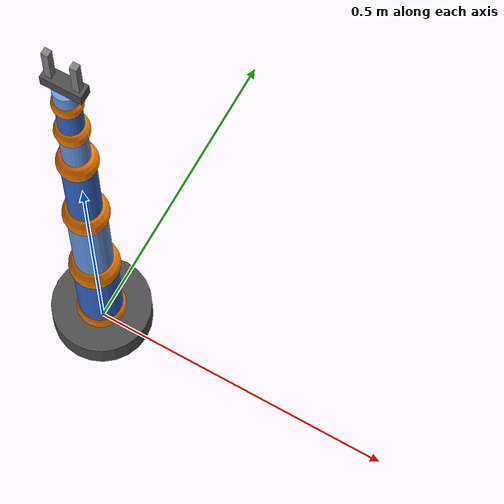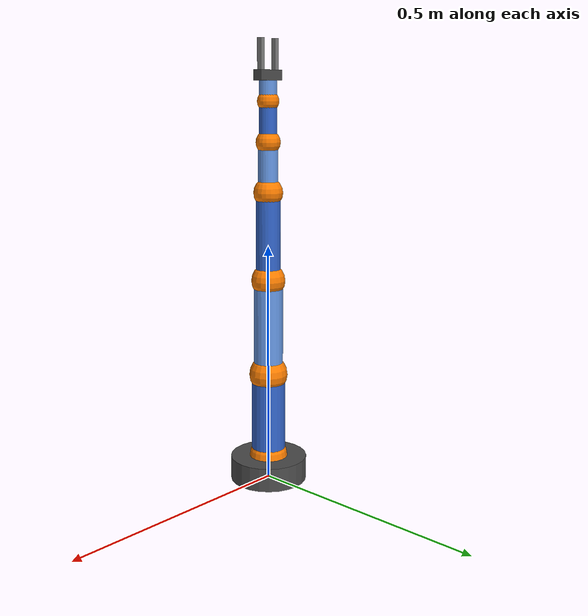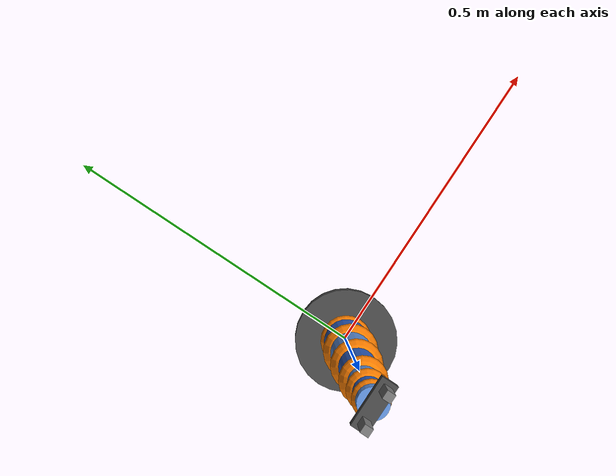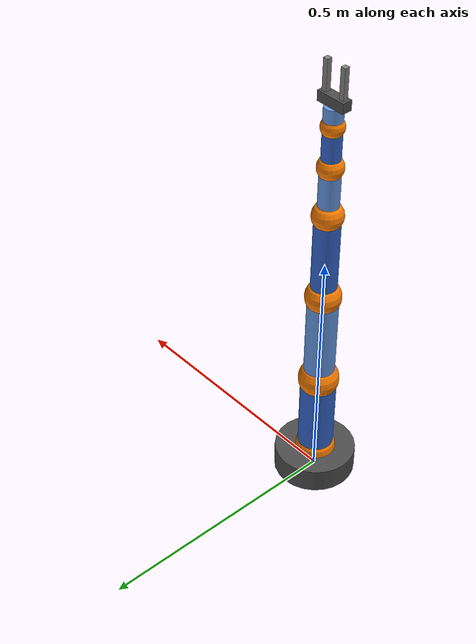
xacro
<?xml version="1.0"?>
<robot xmlns:xacro="http://www.ros.org/wiki/xacro" name="robot_arm">

  <!--   Material Colors     -->
  <material name="white">
    <color rgba="1.0 1.0 1.0 1.0"/>
  </material>
  <material name="grey">
    <color rgba="0.5 0.5 0.5 1.0"/>
  </material>
  <material name="dark_grey">
    <color rgba="0.3 0.3 0.3 1.0"/>
  </material>
  <material name="blue">
    <color rgba="0.2 0.4 0.8 1.0"/>
  </material>
  <material name="light_blue">
    <color rgba="0.4 0.6 0.9 1.0"/>
  </material>
  <material name="orange">
    <color rgba="1.0 0.5 0.0 1.0"/>
  </material>

  <!--   Link Macro          -->
  <xacro:macro name="arm_link" params="name length radius color">
    <link name="${name}">
      <visual>
        <geometry>
          <cylinder length="${length}" radius="${radius}"/>
        </geometry>
        <origin xyz="0 0 ${length/2}" rpy="0 0 0"/>
        <material name="${color}"/>
      </visual>
      <collision>
        <geometry>
          <cylinder length="${length}" radius="${radius}"/>
        </geometry>
        <origin xyz="0 0 ${length/2}" rpy="0 0 0"/>
      </collision>
      <inertial>
        <mass value="1.0"/>
        <origin xyz="0 0 ${length/2}" rpy="0 0 0"/>
        <inertia ixx="0.01" ixy="0.0" ixz="0.0" iyy="0.01" iyz="0.0" izz="0.005"/>
      </inertial>
    </link>
  </xacro:macro>

  <!--   Joint Sphere Macro  -->
  <xacro:macro name="joint_sphere" params="name radius color parent_link">
    <link name="${name}_sphere">
      <visual>
        <geometry>
          <sphere radius="${radius}"/>
        </geometry>
        <origin xyz="0 0 0" rpy="0 0 0"/>
        <material name="${color}"/>
      </visual>
      <collision>
        <geometry>
          <sphere radius="${radius}"/>
        </geometry>
        <origin xyz="0 0 0" rpy="0 0 0"/>
      </collision>
      <inertial>
        <mass value="0.2"/>
        <origin xyz="0 0 0" rpy="0 0 0"/>
        <inertia ixx="0.001" ixy="0.0" ixz="0.0" iyy="0.001" iyz="0.0" izz="0.001"/>
      </inertial>
    </link>
  </xacro:macro>

  <!--   Base Link (fixed)   -->
  <link name="world"/>

  <link name="base_link">
    <visual>
      <geometry>
        <cylinder length="0.05" radius="0.08"/>
      </geometry>
      <origin xyz="0 0 0.025" rpy="0 0 0"/>
      <material name="dark_grey"/>
    </visual>
    <collision>
      <geometry>
        <cylinder length="0.05" radius="0.08"/>
      </geometry>
      <origin xyz="0 0 0.025" rpy="0 0 0"/>
    </collision>
    <inertial>
      <mass value="2.0"/>
      <origin xyz="0 0 0.025" rpy="0 0 0"/>
      <inertia ixx="0.01" ixy="0.0" ixz="0.0" iyy="0.01" iyz="0.0" izz="0.01"/>
    </inertial>
  </link>

  <joint name="world_to_base" type="fixed">
    <parent link="world"/>
    <child link="base_link"/>
    <origin xyz="0 0 0" rpy="0 0 0"/>
  </joint>

  <!--   Joint 1 (Base Yaw) -->
  <xacro:joint_sphere name="joint1" radius="0.04" color="orange" parent_link="base_link"/>
  <joint name="joint1_fixed" type="fixed">
    <parent link="base_link"/>
    <child link="joint1_sphere"/>
    <origin xyz="0 0 0.05" rpy="0 0 0"/>
  </joint>

  <xacro:arm_link name="link1" length="0.18" radius="0.035" color="blue"/>
  <joint name="joint1" type="revolute">
    <parent link="joint1_sphere"/>
    <child link="link1"/>
    <origin xyz="0 0 0.0" rpy="0 0 0"/>
    <axis xyz="0 0 1"/>
    <limit lower="${-pi}" upper="${pi}" effort="100" velocity="1.0"/>
  </joint>

  <!--   Joint 2 (Shoulder)  -->
  <xacro:joint_sphere name="joint2" radius="0.04" color="orange" parent_link="link1"/>
  <joint name="joint2_fixed" type="fixed">
    <parent link="link1"/>
    <child link="joint2_sphere"/>
    <origin xyz="0 0 0.18" rpy="0 0 0"/>
  </joint>

  <xacro:arm_link name="link2" length="0.20" radius="0.03" color="light_blue"/>
  <joint name="joint2" type="revolute">
    <parent link="joint2_sphere"/>
    <child link="link2"/>
    <origin xyz="0 0 0.0" rpy="0 0 0"/>
    <axis xyz="0 1 0"/>
    <limit lower="${-pi}" upper="${pi}" effort="100" velocity="1.0"/>
  </joint>

  <!--   Joint 3 (Elbow)     -->
  <xacro:joint_sphere name="joint3" radius="0.035" color="orange" parent_link="link2"/>
  <joint name="joint3_fixed" type="fixed">
    <parent link="link2"/>
    <child link="joint3_sphere"/>
    <origin xyz="0 0 0.20" rpy="0 0 0"/>
  </joint>

  <xacro:arm_link name="link3" length="0.18" radius="0.025" color="blue"/>
  <joint name="joint3" type="revolute">
    <parent link="joint3_sphere"/>
    <child link="link3"/>
    <origin xyz="0 0 0.0" rpy="0 0 0"/>
    <axis xyz="0 1 0"/>
    <limit lower="${-pi}" upper="${pi}" effort="100" velocity="1.0"/>
  </joint>

  <!--   Joint 4 (Wrist 1)   -->
  <xacro:joint_sphere name="joint4" radius="0.03" color="orange" parent_link="link3"/>
  <joint name="joint4_fixed" type="fixed">
    <parent link="link3"/>
    <child link="joint4_sphere"/>
    <origin xyz="0 0 0.18" rpy="0 0 0"/>
  </joint>

  <xacro:arm_link name="link4" length="0.10" radius="0.02" color="light_blue"/>
  <joint name="joint4" type="revolute">
    <parent link="joint4_sphere"/>
    <child link="link4"/>
    <origin xyz="0 0 0.0" rpy="0 0 0"/>
    <axis xyz="0 1 0"/>
    <limit lower="${-pi}" upper="${pi}" effort="50" velocity="1.5"/>
  </joint>

  <!--   Joint 5 (Wrist 2)   -->
  <xacro:joint_sphere name="joint5" radius="0.025" color="orange" parent_link="link4"/>
  <joint name="joint5_fixed" type="fixed">
    <parent link="link4"/>
    <child link="joint5_sphere"/>
    <origin xyz="0 0 0.10" rpy="0 0 0"/>
  </joint>

  <xacro:arm_link name="link5" length="0.08" radius="0.018" color="blue"/>
  <joint name="joint5" type="revolute">
    <parent link="joint5_sphere"/>
    <child link="link5"/>
    <origin xyz="0 0 0.0" rpy="0 0 0"/>
    <axis xyz="0 0 1"/>
    <limit lower="${-pi}" upper="${pi}" effort="50" velocity="1.5"/>
  </joint>

  <!--   Joint 6 (Wrist 3)   -->
  <xacro:joint_sphere name="joint6" radius="0.022" color="orange" parent_link="link5"/>
  <joint name="joint6_fixed" type="fixed">
    <parent link="link5"/>
    <child link="joint6_sphere"/>
    <origin xyz="0 0 0.08" rpy="0 0 0"/>
  </joint>

  <xacro:arm_link name="link6" length="0.04" radius="0.018" color="light_blue"/>
  <joint name="joint6" type="revolute">
    <parent link="joint6_sphere"/>
    <child link="link6"/>
    <origin xyz="0 0 0.0" rpy="0 0 0"/>
    <axis xyz="0 1 0"/>
    <limit lower="${-pi}" upper="${pi}" effort="30" velocity="2.0"/>
  </joint>

  <!--   Gripper Base             -->
  <link name="gripper_base">
    <visual>
      <geometry>
        <box size="0.06 0.02 0.02"/>
      </geometry>
      <origin xyz="0 0 0.01" rpy="0 0 0"/>
      <material name="dark_grey"/>
    </visual>
    <collision>
      <geometry>
        <box size="0.06 0.02 0.02"/>
      </geometry>
      <origin xyz="0 0 0.01" rpy="0 0 0"/>
    </collision>
    <inertial>
      <mass value="0.3"/>
      <origin xyz="0 0 0.01" rpy="0 0 0"/>
      <inertia ixx="0.001" ixy="0.0" ixz="0.0" iyy="0.001" iyz="0.0" izz="0.001"/>
    </inertial>
  </link>

  <joint name="gripper_base_joint" type="fixed">
    <parent link="link6"/>
    <child link="gripper_base"/>
    <origin xyz="0 0 0.04" rpy="0 0 0"/>
  </joint>

  <!--   Left Finger              -->
  <link name="left_finger">
    <visual>
      <geometry>
        <box size="0.01 0.01 0.06"/>
      </geometry>
      <origin xyz="0 0 0.03" rpy="0 0 0"/>
      <material name="grey"/>
    </visual>
    <collision>
      <geometry>
        <box size="0.01 0.01 0.06"/>
      </geometry>
      <origin xyz="0 0 0.03" rpy="0 0 0"/>
    </collision>
    <inertial>
      <mass value="0.05"/>
      <origin xyz="0 0 0.03" rpy="0 0 0"/>
      <inertia ixx="0.0001" ixy="0.0" ixz="0.0" iyy="0.0001" iyz="0.0" izz="0.0001"/>
    </inertial>
  </link>

  <joint name="left_finger_joint" type="prismatic">
    <parent link="gripper_base"/>
    <child link="left_finger"/>
    <origin xyz="0.02 0 0.02" rpy="0 0 0"/>
    <axis xyz="-1 0 0"/>
    <limit lower="0.0" upper="0.02" effort="10" velocity="0.5"/>
  </joint>

  <!--   Right Finger             -->
  <link name="right_finger">
    <visual>
      <geometry>
        <box size="0.01 0.01 0.06"/>
      </geometry>
      <origin xyz="0 0 0.03" rpy="0 0 0"/>
      <material name="grey"/>
    </visual>
    <collision>
      <geometry>
        <box size="0.01 0.01 0.06"/>
      </geometry>
      <origin xyz="0 0 0.03" rpy="0 0 0"/>
    </collision>
    <inertial>
      <mass value="0.05"/>
      <origin xyz="0 0 0.03" rpy="0 0 0"/>
      <inertia ixx="0.0001" ixy="0.0" ixz="0.0" iyy="0.0001" iyz="0.0" izz="0.0001"/>
    </inertial>
  </link>

  <joint name="right_finger_joint" type="fixed">
    <parent link="gripper_base"/>
    <child link="right_finger"/>
    <origin xyz="-0.02 0 0.02" rpy="0 0 0"/>
  </joint>

  <!--   ros2_control Interface   -->
  <ros2_control name="robot_arm_system" type="system">
    <hardware>
      <plugin>gz_ros2_control/GazeboSimSystem</plugin>
    </hardware>

    <joint name="joint1">
      <command_interface name="position">
        <param name="min">-3.14159</param>
        <param name="max">3.14159</param>
      </command_interface>
      <state_interface name="position"/>
      <state_interface name="velocity"/>
    </joint>

    <joint name="joint2">
      <command_interface name="position">
        <param name="min">-3.14159</param>
        <param name="max">3.14159</param>
      </command_interface>
      <state_interface name="position"/>
      <state_interface name="velocity"/>
    </joint>

    <joint name="joint3">
      <command_interface name="position">
        <param name="min">-3.14159</param>
        <param name="max">3.14159</param>
      </command_interface>
      <state_interface name="position"/>
      <state_interface name="velocity"/>
    </joint>

    <joint name="joint4">
      <command_interface name="position">
        <param name="min">-3.14159</param>
        <param name="max">3.14159</param>
      </command_interface>
      <state_interface name="position"/>
      <state_interface name="velocity"/>
    </joint>

    <joint name="joint5">
      <command_interface name="position">
        <param name="min">-3.14159</param>
        <param name="max">3.14159</param>
      </command_interface>
      <state_interface name="position"/>
      <state_interface name="velocity"/>
    </joint>

    <joint name="joint6">
      <command_interface name="position">
        <param name="min">-3.14159</param>
        <param name="max">3.14159</param>
      </command_interface>
      <state_interface name="position"/>
      <state_interface name="velocity"/>
    </joint>

    <joint name="left_finger_joint">
      <command_interface name="position">
        <param name="min">0.0</param>
        <param name="max">0.02</param>
      </command_interface>
      <state_interface name="position"/>
      <state_interface name="velocity"/>
    </joint>

  </ros2_control>

  <!--   Gazebo ros2_control      -->
  <gazebo>
    <plugin filename="gz_ros2_control-system" name="gz_ros2_control::GazeboSimROS2ControlPlugin">
      <parameters>$(find robot_arm_moveit_config)/config/ros2_controllers.yaml</parameters>
    </plugin>
  </gazebo>

  <!--   Gazebo Visual Colors     -->
  <gazebo reference="base_link">
    <material>
      <ambient>0.3 0.3 0.3 1.0</ambient>
      <diffuse>0.3 0.3 0.3 1.0</diffuse>
    </material>
  </gazebo>
  <gazebo reference="joint1_sphere">
    <material>
      <ambient>1.0 0.5 0.0 1.0</ambient>
      <diffuse>1.0 0.5 0.0 1.0</diffuse>
    </material>
  </gazebo>
  <gazebo reference="link1">
    <material>
      <ambient>0.2 0.4 0.8 1.0</ambient>
      <diffuse>0.2 0.4 0.8 1.0</diffuse>
    </material>
  </gazebo>
  <gazebo reference="joint2_sphere">
    <material>
      <ambient>1.0 0.5 0.0 1.0</ambient>
      <diffuse>1.0 0.5 0.0 1.0</diffuse>
    </material>
  </gazebo>
  <gazebo reference="link2">
    <material>
      <ambient>0.4 0.6 0.9 1.0</ambient>
      <diffuse>0.4 0.6 0.9 1.0</diffuse>
    </material>
  </gazebo>
  <gazebo reference="joint3_sphere">
    <material>
      <ambient>1.0 0.5 0.0 1.0</ambient>
      <diffuse>1.0 0.5 0.0 1.0</diffuse>
    </material>
  </gazebo>
  <gazebo reference="link3">
    <material>
      <ambient>0.2 0.4 0.8 1.0</ambient>
      <diffuse>0.2 0.4 0.8 1.0</diffuse>
    </material>
  </gazebo>
  <gazebo reference="joint4_sphere">
    <material>
      <ambient>1.0 0.5 0.0 1.0</ambient>
      <diffuse>1.0 0.5 0.0 1.0</diffuse>
    </material>
  </gazebo>
  <gazebo reference="link4">
    <material>
      <ambient>0.4 0.6 0.9 1.0</ambient>
      <diffuse>0.4 0.6 0.9 1.0</diffuse>
    </material>
  </gazebo>
  <gazebo reference="joint5_sphere">
    <material>
      <ambient>1.0 0.5 0.0 1.0</ambient>
      <diffuse>1.0 0.5 0.0 1.0</diffuse>
    </material>
  </gazebo>
  <gazebo reference="link5">
    <material>
      <ambient>0.2 0.4 0.8 1.0</ambient>
      <diffuse>0.2 0.4 0.8 1.0</diffuse>
    </material>
  </gazebo>
  <gazebo reference="joint6_sphere">
    <material>
      <ambient>1.0 0.5 0.0 1.0</ambient>
      <diffuse>1.0 0.5 0.0 1.0</diffuse>
    </material>
  </gazebo>
  <gazebo reference="link6">
    <material>
      <ambient>0.4 0.6 0.9 1.0</ambient>
      <diffuse>0.4 0.6 0.9 1.0</diffuse>
    </material>
  </gazebo>
  <gazebo reference="gripper_base">
    <material>
      <ambient>0.3 0.3 0.3 1.0</ambient>
      <diffuse>0.3 0.3 0.3 1.0</diffuse>
    </material>
  </gazebo>
  <gazebo reference="left_finger">
    <material>
      <ambient>0.5 0.5 0.5 1.0</ambient>
      <diffuse>0.5 0.5 0.5 1.0</diffuse>
    </material>
  </gazebo>
  <gazebo reference="right_finger">
    <material>
      <ambient>0.5 0.5 0.5 1.0</ambient>
      <diffuse>0.5 0.5 0.5 1.0</diffuse>
    </material>
  </gazebo>

</robot>
